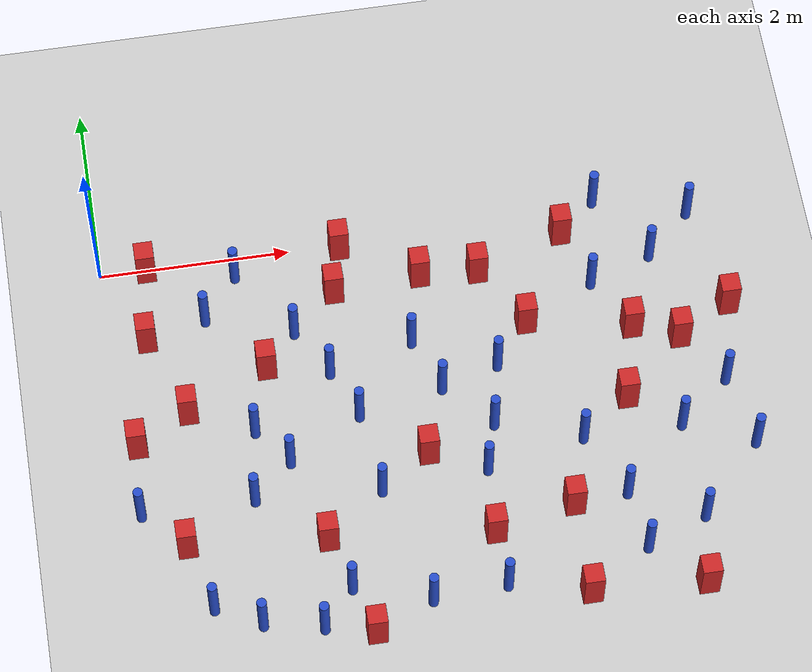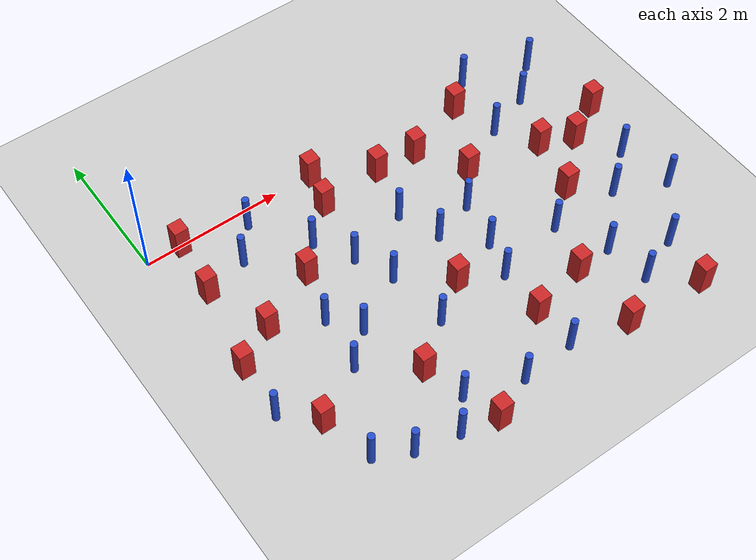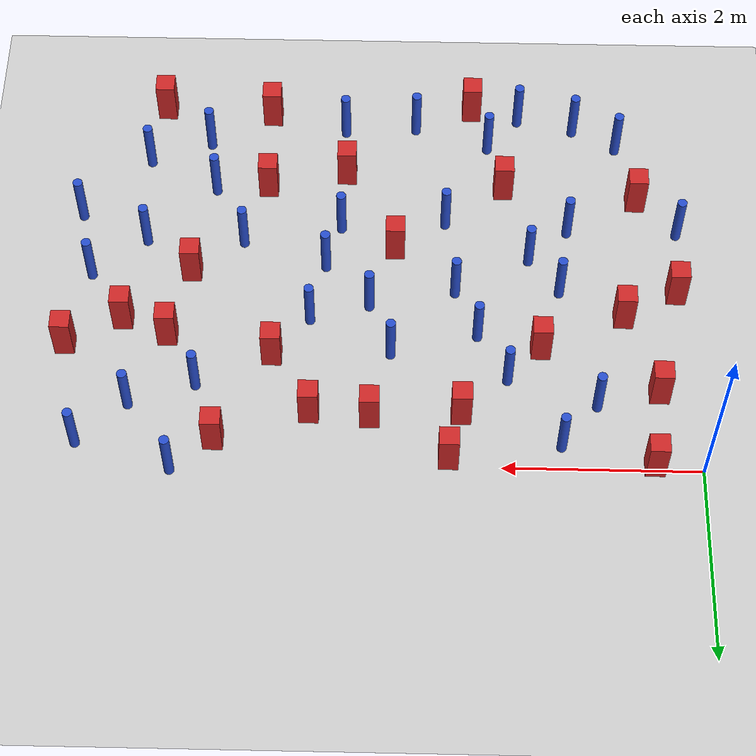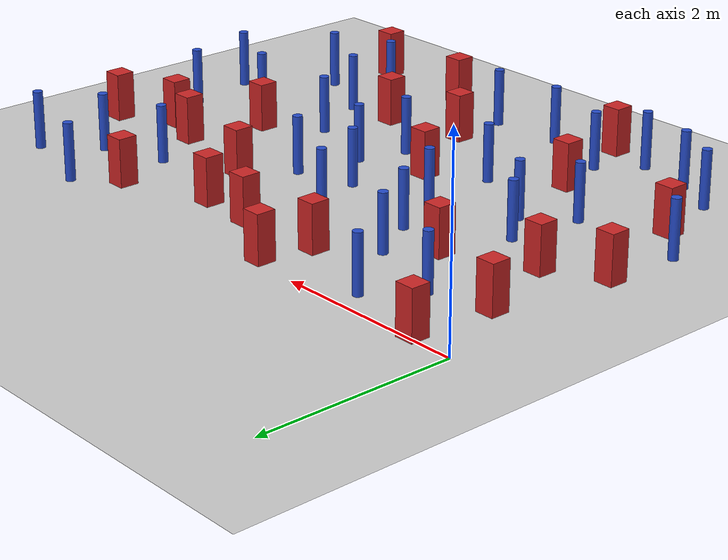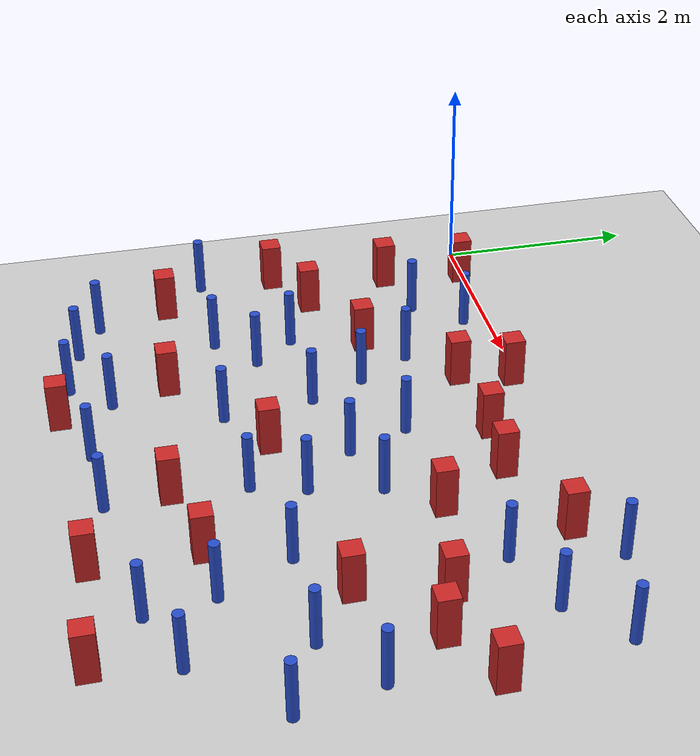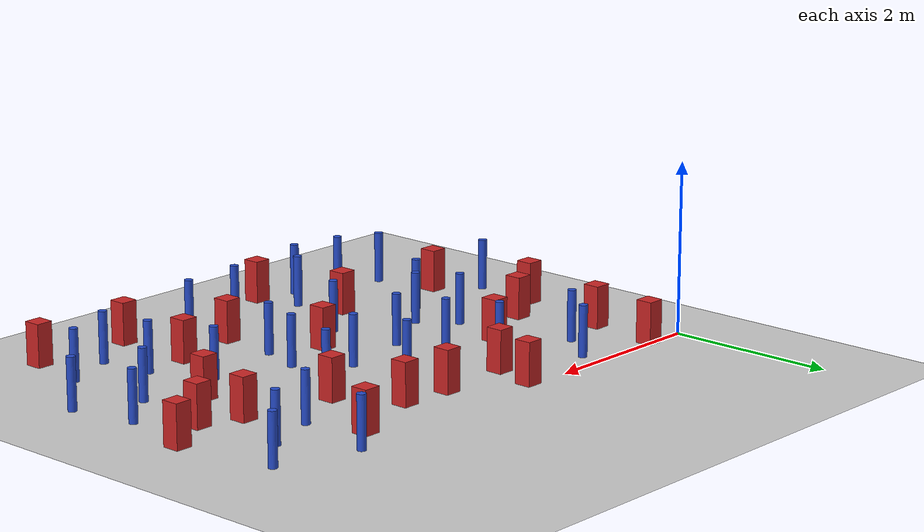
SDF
<sdf version="1.6">
 <world name="default">
  <model name="ground_plane">
   <static>1</static>
   <link name="link">
    <collision name="collision">
     <geometry><plane><normal>0 0 1</normal><size>100 100</size></plane></geometry>
     <surface><friction><ode><mu>100</mu><mu2>50</mu2></ode></friction></surface>
    </collision>
    <visual name="visual">
     <cast_shadows>0</cast_shadows>
     <geometry><plane><normal>0 0 1</normal><size>100 100</size></plane></geometry>
     <material>
      <ambient>1.0 1.0 1.0 1.0</ambient>
      <diffuse>0.8 0.8 0.8 1.0</diffuse>
      <specular>0.01 0.01 0.01 1.000000</specular>
     </material>
    </visual>
   </link>
  </model>
  <model name="square_post_obstacle1">
   <static>true</static>
   <pose>5.86830122638 -1.66071499697 -6.11067671241e-07 -5.50515727128e-06 -8.79689657224e-07 2.37013304536e-05</pose>
   <link name="link">
    <pose>0 0 0.25 0 -0 0</pose>
    <inertial>
     <mass>100</mass>
     <inertia>
      <ixx>0.166667</ixx>
      <ixy>0</ixy>
      <ixz>0</ixz>
      <iyy>0.166667</iyy>
      <iyz>0</iyz>
      <izz>0.166667</izz>
     </inertia>
    </inertial>
    <collision name="collision"><geometry><box><size>.2 .2 .5</size></box></geometry></collision>
    <visual name="visual">
     <geometry><box><size>.2 .2 .5</size></box></geometry>
     <material>
      <script><name>Gazebo/Red</name><uri>file://media/materials/scripts/gazebo.material</uri></script>
     </material>
    </visual>
   </link>
  </model>
  <model name="square_post_obstacle5">
   <static>true</static>
   <pose>0.531658014159 -3.27056971357 -6.11067671241e-07 -5.50515727128e-06 -8.79689657224e-07 2.37013304536e-05</pose>
   <link name="link">
    <pose>0 0 0.25 0 -0 0</pose>
    <inertial>
     <mass>100</mass>
     <inertia>
      <ixx>0.166667</ixx>
      <ixy>0</ixy>
      <ixz>0</ixz>
      <iyy>0.166667</iyy>
      <iyz>0</iyz>
      <izz>0.166667</izz>
     </inertia>
    </inertial>
    <collision name="collision"><geometry><box><size>.2 .2 .5</size></box></geometry></collision>
    <visual name="visual">
     <geometry><box><size>.2 .2 .5</size></box></geometry>
     <material>
      <script><name>Gazebo/Red</name><uri>file://media/materials/scripts/gazebo.material</uri></script>
     </material>
    </visual>
   </link>
  </model>
  <model name="square_post_obstacle13">
   <static>true</static>
   <pose>4.85556807542 -0.253288321257 -6.11067671241e-07 -5.50515727128e-06 -8.79689657224e-07 2.37013304536e-05</pose>
   <link name="link">
    <pose>0 0 0.25 0 -0 0</pose>
    <inertial>
     <mass>100</mass>
     <inertia>
      <ixx>0.166667</ixx>
      <ixy>0</ixy>
      <ixz>0</ixz>
      <iyy>0.166667</iyy>
      <iyz>0</iyz>
      <izz>0.166667</izz>
     </inertia>
    </inertial>
    <collision name="collision"><geometry><box><size>.2 .2 .5</size></box></geometry></collision>
    <visual name="visual">
     <geometry><box><size>.2 .2 .5</size></box></geometry>
     <material>
      <script><name>Gazebo/Red</name><uri>file://media/materials/scripts/gazebo.material</uri></script>
     </material>
    </visual>
   </link>
  </model>
  <model name="square_post_obstacle22">
   <static>true</static>
   <pose>4.44872754876 -3.39286007502 -6.11067671241e-07 -5.50515727128e-06 -8.79689657224e-07 2.37013304536e-05</pose>
   <link name="link">
    <pose>0 0 0.25 0 -0 0</pose>
    <inertial>
     <mass>100</mass>
     <inertia>
      <ixx>0.166667</ixx>
      <ixy>0</ixy>
      <ixz>0</ixz>
      <iyy>0.166667</iyy>
      <iyz>0</iyz>
      <izz>0.166667</izz>
     </inertia>
    </inertial>
    <collision name="collision"><geometry><box><size>.2 .2 .5</size></box></geometry></collision>
    <visual name="visual">
     <geometry><box><size>.2 .2 .5</size></box></geometry>
     <material>
      <script><name>Gazebo/Red</name><uri>file://media/materials/scripts/gazebo.material</uri></script>
     </material>
    </visual>
   </link>
  </model>
  <model name="pole_obstacle20">
   <static>true</static>
   <pose>3.11253889244 -1.29925664123 -9.47619616065e-06 5.49618799737e-07 2.36310414072e-07 -1.55090534793e-07</pose>
   <link name="link">
    <pose>0 0 0.3 0 -0 0</pose>
    <inertial>
     <mass>1</mass>
     <inertia><ixx>0.145833</ixx><ixy>0</ixy><ixz>0</ixz><iyy>0.145833</iyy><iyz>0</iyz><izz>0.125</izz></inertia>
    </inertial>
    <collision name="collision">
     <geometry><cylinder><radius>0.05</radius><length>.6</length></cylinder></geometry>
    </collision>
    <visual name="visual">
     <geometry><cylinder><radius>0.05</radius><length>.6</length></cylinder></geometry>
     <material>
      <script><name>Gazebo/Blue</name><uri>file://media/materials/scripts/gazebo.material</uri></script>
     </material>
    </visual>
   </link>
  </model>
  <model name="square_post_obstacle31">
   <static>true</static>
   <pose>1.58299561077 -1.37875278012 -6.11067671241e-07 -5.50515727128e-06 -8.79689657224e-07 2.37013304536e-05</pose>
   <link name="link">
    <pose>0 0 0.25 0 -0 0</pose>
    <inertial>
     <mass>100</mass>
     <inertia>
      <ixx>0.166667</ixx>
      <ixy>0</ixy>
      <ixz>0</ixz>
      <iyy>0.166667</iyy>
      <iyz>0</iyz>
      <izz>0.166667</izz>
     </inertia>
    </inertial>
    <collision name="collision"><geometry><box><size>.2 .2 .5</size></box></geometry></collision>
    <visual name="visual">
     <geometry><box><size>.2 .2 .5</size></box></geometry>
     <material>
      <script><name>Gazebo/Red</name><uri>file://media/materials/scripts/gazebo.material</uri></script>
     </material>
    </visual>
   </link>
  </model>
  <model name="pole_obstacle25">
   <static>true</static>
   <pose>0.714060411418 -3.9877952971 -9.47619616065e-06 5.49618799737e-07 2.3631041408e-07 -1.55090534791e-07</pose>
   <link name="link">
    <pose>0 0 0.3 0 -0 0</pose>
    <inertial>
     <mass>1</mass>
     <inertia><ixx>0.145833</ixx><ixy>0</ixy><ixz>0</ixz><iyy>0.145833</iyy><iyz>0</iyz><izz>0.125</izz></inertia>
    </inertial>
    <collision name="collision">
     <geometry><cylinder><radius>0.05</radius><length>.6</length></cylinder></geometry>
    </collision>
    <visual name="visual">
     <geometry><cylinder><radius>0.05</radius><length>.6</length></cylinder></geometry>
     <material>
      <script><name>Gazebo/Blue</name><uri>file://media/materials/scripts/gazebo.material</uri></script>
     </material>
    </visual>
   </link>
  </model>
  <model name="pole_obstacle28">
   <static>true</static>
   <pose>5.0760457368 -0.890218081996 -9.47619616065e-06 5.49618799737e-07 2.36310414061e-07 -1.550905348e-07</pose>
   <link name="link">
    <pose>0 0 0.3 0 -0 0</pose>
    <inertial>
     <mass>1</mass>
     <inertia><ixx>0.145833</ixx><ixy>0</ixy><ixz>0</ixz><iyy>0.145833</iyy><iyz>0</iyz><izz>0.125</izz></inertia>
    </inertial>
    <collision name="collision">
     <geometry><cylinder><radius>0.05</radius><length>.6</length></cylinder></geometry>
    </collision>
    <visual name="visual">
     <geometry><cylinder><radius>0.05</radius><length>.6</length></cylinder></geometry>
     <material>
      <script><name>Gazebo/Blue</name><uri>file://media/materials/scripts/gazebo.material</uri></script>
     </material>
    </visual>
   </link>
  </model>
  <model name="pole_obstacle30">
   <static>true</static>
   <pose>5.00867443221 -3.35146531265 -9.47619616065e-06 5.49618799738e-07 2.36310414051e-07 -1.55090534805e-07</pose>
   <link name="link">
    <pose>0 0 0.3 0 -0 0</pose>
    <inertial>
     <mass>1</mass>
     <inertia><ixx>0.145833</ixx><ixy>0</ixy><ixz>0</ixz><iyy>0.145833</iyy><iyz>0</iyz><izz>0.125</izz></inertia>
    </inertial>
    <collision name="collision">
     <geometry><cylinder><radius>0.05</radius><length>.6</length></cylinder></geometry>
    </collision>
    <visual name="visual">
     <geometry><cylinder><radius>0.05</radius><length>.6</length></cylinder></geometry>
     <material>
      <script><name>Gazebo/Blue</name><uri>file://media/materials/scripts/gazebo.material</uri></script>
     </material>
    </visual>
   </link>
  </model>
  <model name="square_post_obstacle35">
   <static>true</static>
   <pose>3.08337548846 -2.60095719022 -6.11067671241e-07 -5.50515727128e-06 -8.79689657224e-07 2.37013304536e-05</pose>
   <link name="link">
    <pose>0 0 0.25 0 -0 0</pose>
    <inertial>
     <mass>100</mass>
     <inertia>
      <ixx>0.166667</ixx>
      <ixy>0</ixy>
      <ixz>0</ixz>
      <iyy>0.166667</iyy>
      <iyz>0</iyz>
      <izz>0.166667</izz>
     </inertia>
    </inertial>
    <collision name="collision"><geometry><box><size>.2 .2 .5</size></box></geometry></collision>
    <visual name="visual">
     <geometry><box><size>.2 .2 .5</size></box></geometry>
     <material>
      <script><name>Gazebo/Red</name><uri>file://media/materials/scripts/gazebo.material</uri></script>
     </material>
    </visual>
   </link>
  </model>
  <model name="square_post_obstacle48">
   <static>true</static>
   <pose>0.720664369103 -1.77512101826 -6.11067671241e-07 -5.50515727128e-06 -8.79689657224e-07 2.37013304536e-05</pose>
   <link name="link">
    <pose>0 0 0.25 0 -0 0</pose>
    <inertial>
     <mass>100</mass>
     <inertia>
      <ixx>0.166667</ixx>
      <ixy>0</ixy>
      <ixz>0</ixz>
      <iyy>0.166667</iyy>
      <iyz>0</iyz>
      <izz>0.166667</izz>
     </inertia>
    </inertial>
    <collision name="collision"><geometry><box><size>.2 .2 .5</size></box></geometry></collision>
    <visual name="visual">
     <geometry><box><size>.2 .2 .5</size></box></geometry>
     <material>
      <script><name>Gazebo/Red</name><uri>file://media/materials/scripts/gazebo.material</uri></script>
     </material>
    </visual>
   </link>
  </model>
  <model name="pole_obstacle47">
   <static>true</static>
   <pose>2.45380788873 -2.06779763313 -9.47619616065e-06 5.49618799737e-07 2.36310414051e-07 -1.55090534807e-07</pose>
   <link name="link">
    <pose>0 0 0.3 0 -0 0</pose>
    <inertial>
     <mass>1</mass>
     <inertia><ixx>0.145833</ixx><ixy>0</ixy><ixz>0</ixz><iyy>0.145833</iyy><iyz>0</iyz><izz>0.125</izz></inertia>
    </inertial>
    <collision name="collision">
     <geometry><cylinder><radius>0.05</radius><length>.6</length></cylinder></geometry>
    </collision>
    <visual name="visual">
     <geometry><cylinder><radius>0.05</radius><length>.6</length></cylinder></geometry>
     <material>
      <script><name>Gazebo/Blue</name><uri>file://media/materials/scripts/gazebo.material</uri></script>
     </material>
    </visual>
   </link>
  </model>
  <model name="pole_obstacle48">
   <static>true</static>
   <pose>6.41035813431 -2.98511904987 -9.47619616065e-06 5.49618799738e-07 2.36310414051e-07 -1.55090534805e-07</pose>
   <link name="link">
    <pose>0 0 0.3 0 -0 0</pose>
    <inertial>
     <mass>1</mass>
     <inertia><ixx>0.145833</ixx><ixy>0</ixy><ixz>0</ixz><iyy>0.145833</iyy><iyz>0</iyz><izz>0.125</izz></inertia>
    </inertial>
    <collision name="collision">
     <geometry><cylinder><radius>0.05</radius><length>.6</length></cylinder></geometry>
    </collision>
    <visual name="visual">
     <geometry><cylinder><radius>0.05</radius><length>.6</length></cylinder></geometry>
     <material>
      <script><name>Gazebo/Blue</name><uri>file://media/materials/scripts/gazebo.material</uri></script>
     </material>
    </visual>
   </link>
  </model>
  <model name="square_post_obstacle52">
   <static>true</static>
   <pose>3.91695977695 -0.578861720409 -6.11067671241e-07 -5.50515727128e-06 -8.79689657224e-07 2.37013304536e-05</pose>
   <link name="link">
    <pose>0 0 0.25 0 -0 0</pose>
    <inertial>
     <mass>100</mass>
     <inertia>
      <ixx>0.166667</ixx>
      <ixy>0</ixy>
      <ixz>0</ixz>
      <iyy>0.166667</iyy>
      <iyz>0</iyz>
      <izz>0.166667</izz>
     </inertia>
    </inertial>
    <collision name="collision"><geometry><box><size>.2 .2 .5</size></box></geometry></collision>
    <visual name="visual">
     <geometry><box><size>.2 .2 .5</size></box></geometry>
     <material>
      <script><name>Gazebo/Red</name><uri>file://media/materials/scripts/gazebo.material</uri></script>
     </material>
    </visual>
   </link>
  </model>
  <model name="square_post_obstacle54">
   <static>true</static>
   <pose>4.31930750571 -1.25396493504 -6.11067671241e-07 -5.50515727128e-06 -8.79689657224e-07 2.37013304536e-05</pose>
   <link name="link">
    <pose>0 0 0.25 0 -0 0</pose>
    <inertial>
     <mass>100</mass>
     <inertia>
      <ixx>0.166667</ixx>
      <ixy>0</ixy>
      <ixz>0</ixz>
      <iyy>0.166667</iyy>
      <iyz>0</iyz>
      <izz>0.166667</izz>
     </inertia>
    </inertial>
    <collision name="collision"><geometry><box><size>.2 .2 .5</size></box></geometry></collision>
    <visual name="visual">
     <geometry><box><size>.2 .2 .5</size></box></geometry>
     <material>
      <script><name>Gazebo/Red</name><uri>file://media/materials/scripts/gazebo.material</uri></script>
     </material>
    </visual>
   </link>
  </model>
  <model name="square_post_obstacle55">
   <static>true</static>
   <pose>2.3941682482 -0.592048305491 -6.11067671241e-07 -5.50515727128e-06 -8.79689657224e-07 2.37013304536e-05</pose>
   <link name="link">
    <pose>0 0 0.25 0 -0 0</pose>
    <inertial>
     <mass>100</mass>
     <inertia>
      <ixx>0.166667</ixx>
      <ixy>0</ixy>
      <ixz>0</ixz>
      <iyy>0.166667</iyy>
      <iyz>0</iyz>
      <izz>0.166667</izz>
     </inertia>
    </inertial>
    <collision name="collision"><geometry><box><size>.2 .2 .5</size></box></geometry></collision>
    <visual name="visual">
     <geometry><box><size>.2 .2 .5</size></box></geometry>
     <material>
      <script><name>Gazebo/Red</name><uri>file://media/materials/scripts/gazebo.material</uri></script>
     </material>
    </visual>
   </link>
  </model>
  <model name="square_post_obstacle61">
   <static>true</static>
   <pose>1.93967803504 -3.40700152004 -6.11067671241e-07 -5.50515727128e-06 -8.79689657224e-07 2.37013304536e-05</pose>
   <link name="link">
    <pose>0 0 0.25 0 -0 0</pose>
    <inertial>
     <mass>100</mass>
     <inertia>
      <ixx>0.166667</ixx>
      <ixy>0</ixy>
      <ixz>0</ixz>
      <iyy>0.166667</iyy>
      <iyz>0</iyz>
      <izz>0.166667</izz>
     </inertia>
    </inertial>
    <collision name="collision"><geometry><box><size>.2 .2 .5</size></box></geometry></collision>
    <visual name="visual">
     <geometry><box><size>.2 .2 .5</size></box></geometry>
     <material>
      <script><name>Gazebo/Red</name><uri>file://media/materials/scripts/gazebo.material</uri></script>
     </material>
    </visual>
   </link>
  </model>
  <model name="square_post_obstacle63">
   <static>true</static>
   <pose>3.61351188917 -3.57817391132 -6.11067671241e-07 -5.50515727128e-06 -8.79689657224e-07 2.37013304536e-05</pose>
   <link name="link">
    <pose>0 0 0.25 0 -0 0</pose>
    <inertial>
     <mass>100</mass>
     <inertia>
      <ixx>0.166667</ixx>
      <ixy>0</ixy>
      <ixz>0</ixz>
      <iyy>0.166667</iyy>
      <iyz>0</iyz>
      <izz>0.166667</izz>
     </inertia>
    </inertial>
    <collision name="collision"><geometry><box><size>.2 .2 .5</size></box></geometry></collision>
    <visual name="visual">
     <geometry><box><size>.2 .2 .5</size></box></geometry>
     <material>
      <script><name>Gazebo/Red</name><uri>file://media/materials/scripts/gazebo.material</uri></script>
     </material>
    </visual>
   </link>
  </model>
  <model name="pole_obstacle61">
   <static>true</static>
   <pose>2.8786557732 -4.2247093212 -9.47619616065e-06 5.49618799738e-07 2.3631041406e-07 -1.55090534801e-07</pose>
   <link name="link">
    <pose>0 0 0.3 0 -0 0</pose>
    <inertial>
     <mass>1</mass>
     <inertia><ixx>0.145833</ixx><ixy>0</ixy><ixz>0</ixz><iyy>0.145833</iyy><iyz>0</iyz><izz>0.125</izz></inertia>
    </inertial>
    <collision name="collision">
     <geometry><cylinder><radius>0.05</radius><length>.6</length></cylinder></geometry>
    </collision>
    <visual name="visual">
     <geometry><cylinder><radius>0.05</radius><length>.6</length></cylinder></geometry>
     <material>
      <script><name>Gazebo/Blue</name><uri>file://media/materials/scripts/gazebo.material</uri></script>
     </material>
    </visual>
   </link>
  </model>
  <model name="square_post_obstacle75">
   <static>true</static>
   <pose>4.44980734905 -4.37279620304 -6.11067671241e-07 -5.50515727128e-06 -8.79689657224e-07 2.37013304536e-05</pose>
   <link name="link">
    <pose>0 0 0.25 0 -0 0</pose>
    <inertial>
     <mass>100</mass>
     <inertia>
      <ixx>0.166667</ixx>
      <ixy>0</ixy>
      <ixz>0</ixz>
      <iyy>0.166667</iyy>
      <iyz>0</iyz>
      <izz>0.166667</izz>
     </inertia>
    </inertial>
    <collision name="collision"><geometry><box><size>.2 .2 .5</size></box></geometry></collision>
    <visual name="visual">
     <geometry><box><size>.2 .2 .5</size></box></geometry>
     <material>
      <script><name>Gazebo/Red</name><uri>file://media/materials/scripts/gazebo.material</uri></script>
     </material>
    </visual>
   </link>
  </model>
  <model name="pole_obstacle76">
   <static>true</static>
   <pose>5.70200396164 -2.66939371902 -9.47619616065e-06 5.49618799738e-07 2.36310414051e-07 -1.55090534805e-07</pose>
   <link name="link">
    <pose>0 0 0.3 0 -0 0</pose>
    <inertial>
     <mass>1</mass>
     <inertia><ixx>0.145833</ixx><ixy>0</ixy><ixz>0</ixz><iyy>0.145833</iyy><iyz>0</iyz><izz>0.125</izz></inertia>
    </inertial>
    <collision name="collision">
     <geometry><cylinder><radius>0.05</radius><length>.6</length></cylinder></geometry>
    </collision>
    <visual name="visual">
     <geometry><cylinder><radius>0.05</radius><length>.6</length></cylinder></geometry>
     <material>
      <script><name>Gazebo/Blue</name><uri>file://media/materials/scripts/gazebo.material</uri></script>
     </material>
    </visual>
   </link>
  </model>
  <model name="pole_obstacle82">
   <static>true</static>
   <pose>5.2673751742 0.0861989654456 -9.47619616065e-06 5.49618799737e-07 2.36310414064e-07 -1.55090534798e-07</pose>
   <link name="link">
    <pose>0 0 0.3 0 -0 0</pose>
    <inertial>
     <mass>1</mass>
     <inertia><ixx>0.145833</ixx><ixy>0</ixy><ixz>0</ixz><iyy>0.145833</iyy><iyz>0</iyz><izz>0.125</izz></inertia>
    </inertial>
    <collision name="collision">
     <geometry><cylinder><radius>0.05</radius><length>.6</length></cylinder></geometry>
    </collision>
    <visual name="visual">
     <geometry><cylinder><radius>0.05</radius><length>.6</length></cylinder></geometry>
     <material>
      <script><name>Gazebo/Blue</name><uri>file://media/materials/scripts/gazebo.material</uri></script>
     </material>
    </visual>
   </link>
  </model>
  <model name="pole_obstacle90">
   <static>true</static>
   <pose>5.1034576229 -3.9761638309 -9.47619616065e-06 5.49618799737e-07 2.36310414056e-07 -1.55090534802e-07</pose>
   <link name="link">
    <pose>0 0 0.3 0 -0 0</pose>
    <inertial>
     <mass>1</mass>
     <inertia><ixx>0.145833</ixx><ixy>0</ixy><ixz>0</ixz><iyy>0.145833</iyy><iyz>0</iyz><izz>0.125</izz></inertia>
    </inertial>
    <collision name="collision">
     <geometry><cylinder><radius>0.05</radius><length>.6</length></cylinder></geometry>
    </collision>
    <visual name="visual">
     <geometry><cylinder><radius>0.05</radius><length>.6</length></cylinder></geometry>
     <material>
      <script><name>Gazebo/Blue</name><uri>file://media/materials/scripts/gazebo.material</uri></script>
     </material>
    </visual>
   </link>
  </model>
  <model name="pole_obstacle93">
   <static>true</static>
   <pose>1.37252944193 -2.08955903736 -9.47619616065e-06 5.49618799737e-07 2.36310414062e-07 -1.55090534798e-07</pose>
   <link name="link">
    <pose>0 0 0.3 0 -0 0</pose>
    <inertial>
     <mass>1</mass>
     <inertia><ixx>0.145833</ixx><ixy>0</ixy><ixz>0</ixz><iyy>0.145833</iyy><iyz>0</iyz><izz>0.125</izz></inertia>
    </inertial>
    <collision name="collision">
     <geometry><cylinder><radius>0.05</radius><length>.6</length></cylinder></geometry>
    </collision>
    <visual name="visual">
     <geometry><cylinder><radius>0.05</radius><length>.6</length></cylinder></geometry>
     <material>
      <script><name>Gazebo/Blue</name><uri>file://media/materials/scripts/gazebo.material</uri></script>
     </material>
    </visual>
   </link>
  </model>
  <model name="pole_obstacle97">
   <static>true</static>
   <pose>5.74144183251 -0.65188639517 -9.47619616065e-06 5.49618799737e-07 2.36310414061e-07 -1.550905348e-07</pose>
   <link name="link">
    <pose>0 0 0.3 0 -0 0</pose>
    <inertial>
     <mass>1</mass>
     <inertia><ixx>0.145833</ixx><ixy>0</ixy><ixz>0</ixz><iyy>0.145833</iyy><iyz>0</iyz><izz>0.125</izz></inertia>
    </inertial>
    <collision name="collision">
     <geometry><cylinder><radius>0.05</radius><length>.6</length></cylinder></geometry>
    </collision>
    <visual name="visual">
     <geometry><cylinder><radius>0.05</radius><length>.6</length></cylinder></geometry>
     <material>
      <script><name>Gazebo/Blue</name><uri>file://media/materials/scripts/gazebo.material</uri></script>
     </material>
    </visual>
   </link>
  </model>
  <model name="pole_obstacle103">
   <static>true</static>
   <pose>2.10201894241 -3.97237946437 -9.47619616065e-06 5.49618799737e-07 2.36310414046e-07 -1.5509053481e-07</pose>
   <link name="link">
    <pose>0 0 0.3 0 -0 0</pose>
    <inertial>
     <mass>1</mass>
     <inertia><ixx>0.145833</ixx><ixy>0</ixy><ixz>0</ixz><iyy>0.145833</iyy><iyz>0</iyz><izz>0.125</izz></inertia>
    </inertial>
    <collision name="collision">
     <geometry><cylinder><radius>0.05</radius><length>.6</length></cylinder></geometry>
    </collision>
    <visual name="visual">
     <geometry><cylinder><radius>0.05</radius><length>.6</length></cylinder></geometry>
     <material>
      <script><name>Gazebo/Blue</name><uri>file://media/materials/scripts/gazebo.material</uri></script>
     </material>
    </visual>
   </link>
  </model>
  <model name="pole_obstacle105">
   <static>true</static>
   <pose>1.27134130306 -2.86104513482 -9.47619616065e-06 5.49618799737e-07 2.36310414062e-07 -1.55090534798e-07</pose>
   <link name="link">
    <pose>0 0 0.3 0 -0 0</pose>
    <inertial>
     <mass>1</mass>
     <inertia><ixx>0.145833</ixx><ixy>0</ixy><ixz>0</ixz><iyy>0.145833</iyy><iyz>0</iyz><izz>0.125</izz></inertia>
    </inertial>
    <collision name="collision">
     <geometry><cylinder><radius>0.05</radius><length>.6</length></cylinder></geometry>
    </collision>
    <visual name="visual">
     <geometry><cylinder><radius>0.05</radius><length>.6</length></cylinder></geometry>
     <material>
      <script><name>Gazebo/Blue</name><uri>file://media/materials/scripts/gazebo.material</uri></script>
     </material>
    </visual>
   </link>
  </model>
  <model name="pole_obstacle107">
   <static>true</static>
   <pose>6.22856777032 -0.199704851686 -9.47619616065e-06 5.49618799738e-07 2.36310414072e-07 -1.55090534795e-07</pose>
   <link name="link">
    <pose>0 0 0.3 0 -0 0</pose>
    <inertial>
     <mass>1</mass>
     <inertia><ixx>0.145833</ixx><ixy>0</ixy><ixz>0</ixz><iyy>0.145833</iyy><iyz>0</iyz><izz>0.125</izz></inertia>
    </inertial>
    <collision name="collision">
     <geometry><cylinder><radius>0.05</radius><length>.6</length></cylinder></geometry>
    </collision>
    <visual name="visual">
     <geometry><cylinder><radius>0.05</radius><length>.6</length></cylinder></geometry>
     <material>
      <script><name>Gazebo/Blue</name><uri>file://media/materials/scripts/gazebo.material</uri></script>
     </material>
    </visual>
   </link>
  </model>
  <model name="square_post_obstacle95">
   <static>true</static>
   <pose>0.487415033159 -0.0414900106225 -6.11067671241e-07 -5.50515727128e-06 -8.79689657224e-07 2.37013304536e-05</pose>
   <link name="link">
    <pose>0 0 0.25 0 -0 0</pose>
    <inertial>
     <mass>100</mass>
     <inertia>
      <ixx>0.166667</ixx>
      <ixy>0</ixy>
      <ixz>0</ixz>
      <iyy>0.166667</iyy>
      <iyz>0</iyz>
      <izz>0.166667</izz>
     </inertia>
    </inertial>
    <collision name="collision"><geometry><box><size>.2 .2 .5</size></box></geometry></collision>
    <visual name="visual">
     <geometry><box><size>.2 .2 .5</size></box></geometry>
     <material>
      <script><name>Gazebo/Red</name><uri>file://media/materials/scripts/gazebo.material</uri></script>
     </material>
    </visual>
   </link>
  </model>
  <model name="pole_obstacle113">
   <static>true</static>
   <pose>1.0275561532 -0.7168173592 -9.47619616065e-06 5.49618799737e-07 2.36310414051e-07 -1.55090534805e-07</pose>
   <link name="link">
    <pose>0 0 0.3 0 -0 0</pose>
    <inertial>
     <mass>1</mass>
     <inertia><ixx>0.145833</ixx><ixy>0</ixy><ixz>0</ixz><iyy>0.145833</iyy><iyz>0</iyz><izz>0.125</izz></inertia>
    </inertial>
    <collision name="collision">
     <geometry><cylinder><radius>0.05</radius><length>.6</length></cylinder></geometry>
    </collision>
    <visual name="visual">
     <geometry><cylinder><radius>0.05</radius><length>.6</length></cylinder></geometry>
     <material>
      <script><name>Gazebo/Blue</name><uri>file://media/materials/scripts/gazebo.material</uri></script>
     </material>
    </visual>
   </link>
  </model>
  <model name="square_post_obstacle102">
   <static>true</static>
   <pose>2.52334339635 -0.075984230897 -6.11067671241e-07 -5.50515727128e-06 -8.79689657224e-07 2.37013304536e-05</pose>
   <link name="link">
    <pose>0 0 0.25 0 -0 0</pose>
    <inertial>
     <mass>100</mass>
     <inertia>
      <ixx>0.166667</ixx>
      <ixy>0</ixy>
      <ixz>0</ixz>
      <iyy>0.166667</iyy>
      <iyz>0</iyz>
      <izz>0.166667</izz>
     </inertia>
    </inertial>
    <collision name="collision"><geometry><box><size>.2 .2 .5</size></box></geometry></collision>
    <visual name="visual">
     <geometry><box><size>.2 .2 .5</size></box></geometry>
     <material>
      <script><name>Gazebo/Red</name><uri>file://media/materials/scripts/gazebo.material</uri></script>
     </material>
    </visual>
   </link>
  </model>
  <model name="pole_obstacle134">
   <static>true</static>
   <pose>3.9472474391 -1.70288127452 -9.47619616065e-06 5.49618799737e-07 2.36310414072e-07 -1.55090534793e-07</pose>
   <link name="link">
    <pose>0 0 0.3 0 -0 0</pose>
    <inertial>
     <mass>1</mass>
     <inertia><ixx>0.145833</ixx><ixy>0</ixy><ixz>0</ixz><iyy>0.145833</iyy><iyz>0</iyz><izz>0.125</izz></inertia>
    </inertial>
    <collision name="collision">
     <geometry><cylinder><radius>0.05</radius><length>.6</length></cylinder></geometry>
    </collision>
    <visual name="visual">
     <geometry><cylinder><radius>0.05</radius><length>.6</length></cylinder></geometry>
     <material>
      <script><name>Gazebo/Blue</name><uri>file://media/materials/scripts/gazebo.material</uri></script>
     </material>
    </visual>
   </link>
  </model>
  <model name="square_post_obstacle129">
   <static>true</static>
   <pose>5.19985017555 -2.27401234155 -6.11067671241e-07 -5.50515727128e-06 -8.79689657224e-07 2.37013304536e-05</pose>
   <link name="link">
    <pose>0 0 0.25 0 -0 0</pose>
    <inertial>
     <mass>100</mass>
     <inertia>
      <ixx>0.166667</ixx>
      <ixy>0</ixy>
      <ixz>0</ixz>
      <iyy>0.166667</iyy>
      <iyz>0</iyz>
      <izz>0.166667</izz>
     </inertia>
    </inertial>
    <collision name="collision"><geometry><box><size>.2 .2 .5</size></box></geometry></collision>
    <visual name="visual">
     <geometry><box><size>.2 .2 .5</size></box></geometry>
     <material>
      <script><name>Gazebo/Red</name><uri>file://media/materials/scripts/gazebo.material</uri></script>
     </material>
    </visual>
   </link>
  </model>
  <model name="pole_obstacle142">
   <static>true</static>
   <pose>3.65548129713 -2.87441362496 -9.47619616065e-06 5.49618799737e-07 2.36310414051e-07 -1.55090534807e-07</pose>
   <link name="link">
    <pose>0 0 0.3 0 -0 0</pose>
    <inertial>
     <mass>1</mass>
     <inertia><ixx>0.145833</ixx><ixy>0</ixy><ixz>0</ixz><iyy>0.145833</iyy><iyz>0</iyz><izz>0.125</izz></inertia>
    </inertial>
    <collision name="collision">
     <geometry><cylinder><radius>0.05</radius><length>.6</length></cylinder></geometry>
    </collision>
    <visual name="visual">
     <geometry><cylinder><radius>0.05</radius><length>.6</length></cylinder></geometry>
     <material>
      <script><name>Gazebo/Blue</name><uri>file://media/materials/scripts/gazebo.material</uri></script>
     </material>
    </visual>
   </link>
  </model>
  <model name="pole_obstacle146">
   <static>true</static>
   <pose>1.92386983412 -1.00737284559 -9.47619616065e-06 5.49618799738e-07 2.36310414064e-07 -1.55090534797e-07</pose>
   <link name="link">
    <pose>0 0 0.3 0 -0 0</pose>
    <inertial>
     <mass>1</mass>
     <inertia><ixx>0.145833</ixx><ixy>0</ixy><ixz>0</ixz><iyy>0.145833</iyy><iyz>0</iyz><izz>0.125</izz></inertia>
    </inertial>
    <collision name="collision">
     <geometry><cylinder><radius>0.05</radius><length>.6</length></cylinder></geometry>
    </collision>
    <visual name="visual">
     <geometry><cylinder><radius>0.05</radius><length>.6</length></cylinder></geometry>
     <material>
      <script><name>Gazebo/Blue</name><uri>file://media/materials/scripts/gazebo.material</uri></script>
     </material>
    </visual>
   </link>
  </model>
  <model name="pole_obstacle147">
   <static>true</static>
   <pose>5.73982027268 -3.72153784572 -9.47619616065e-06 5.49618799738e-07 2.36310414051e-07 -1.55090534805e-07</pose>
   <link name="link">
    <pose>0 0 0.3 0 -0 0</pose>
    <inertial>
     <mass>1</mass>
     <inertia><ixx>0.145833</ixx><ixy>0</ixy><ixz>0</ixz><iyy>0.145833</iyy><iyz>0</iyz><izz>0.125</izz></inertia>
    </inertial>
    <collision name="collision">
     <geometry><cylinder><radius>0.05</radius><length>.6</length></cylinder></geometry>
    </collision>
    <visual name="visual">
     <geometry><cylinder><radius>0.05</radius><length>.6</length></cylinder></geometry>
     <material>
      <script><name>Gazebo/Blue</name><uri>file://media/materials/scripts/gazebo.material</uri></script>
     </material>
    </visual>
   </link>
  </model>
  <model name="pole_obstacle148">
   <static>true</static>
   <pose>1.68370239378 -2.48863569007 -9.47619616065e-06 5.49618799737e-07 2.36310414062e-07 -1.55090534798e-07</pose>
   <link name="link">
    <pose>0 0 0.3 0 -0 0</pose>
    <inertial>
     <mass>1</mass>
     <inertia><ixx>0.145833</ixx><ixy>0</ixy><ixz>0</ixz><iyy>0.145833</iyy><iyz>0</iyz><izz>0.125</izz></inertia>
    </inertial>
    <collision name="collision">
     <geometry><cylinder><radius>0.05</radius><length>.6</length></cylinder></geometry>
    </collision>
    <visual name="visual">
     <geometry><cylinder><radius>0.05</radius><length>.6</length></cylinder></geometry>
     <material>
      <script><name>Gazebo/Blue</name><uri>file://media/materials/scripts/gazebo.material</uri></script>
     </material>
    </visual>
   </link>
  </model>
  <model name="square_post_obstacle137">
   <static>true</static>
   <pose>0.399843714477 -0.874456353951 -6.11067671241e-07 -5.50515727128e-06 -8.79689657224e-07 2.37013304536e-05</pose>
   <link name="link">
    <pose>0 0 0.25 0 -0 0</pose>
    <inertial>
     <mass>100</mass>
     <inertia>
      <ixx>0.166667</ixx>
      <ixy>0</ixy>
      <ixz>0</ixz>
      <iyy>0.166667</iyy>
      <iyz>0</iyz>
      <izz>0.166667</izz>
     </inertia>
    </inertial>
    <collision name="collision"><geometry><box><size>.2 .2 .5</size></box></geometry></collision>
    <visual name="visual">
     <geometry><box><size>.2 .2 .5</size></box></geometry>
     <material>
      <script><name>Gazebo/Red</name><uri>file://media/materials/scripts/gazebo.material</uri></script>
     </material>
    </visual>
   </link>
  </model>
  <model name="pole_obstacle152">
   <static>true</static>
   <pose>2.55755493089 -2.94888286398 -9.47619616065e-06 5.49618799737e-07 2.36310414051e-07 -1.55090534807e-07</pose>
   <link name="link">
    <pose>0 0 0.3 0 -0 0</pose>
    <inertial>
     <mass>1</mass>
     <inertia><ixx>0.145833</ixx><ixy>0</ixy><ixz>0</ixz><iyy>0.145833</iyy><iyz>0</iyz><izz>0.125</izz></inertia>
    </inertial>
    <collision name="collision">
     <geometry><cylinder><radius>0.05</radius><length>.6</length></cylinder></geometry>
    </collision>
    <visual name="visual">
     <geometry><cylinder><radius>0.05</radius><length>.6</length></cylinder></geometry>
     <material>
      <script><name>Gazebo/Blue</name><uri>file://media/materials/scripts/gazebo.material</uri></script>
     </material>
    </visual>
   </link>
  </model>
  <model name="pole_obstacle164">
   <static>true</static>
   <pose>3.33950867203 -1.88448606209 -9.47619616065e-06 5.49618799737e-07 2.36310414072e-07 -1.55090534793e-07</pose>
   <link name="link">
    <pose>0 0 0.3 0 -0 0</pose>
    <inertial>
     <mass>1</mass>
     <inertia><ixx>0.145833</ixx><ixy>0</ixy><ixz>0</ixz><iyy>0.145833</iyy><iyz>0</iyz><izz>0.125</izz></inertia>
    </inertial>
    <collision name="collision">
     <geometry><cylinder><radius>0.05</radius><length>.6</length></cylinder></geometry>
    </collision>
    <visual name="visual">
     <geometry><cylinder><radius>0.05</radius><length>.6</length></cylinder></geometry>
     <material>
      <script><name>Gazebo/Blue</name><uri>file://media/materials/scripts/gazebo.material</uri></script>
     </material>
    </visual>
   </link>
  </model>
  <model name="pole_obstacle165">
   <static>true</static>
   <pose>3.64267580898 -4.17358866189 -9.47619616065e-06 5.49618799738e-07 2.3631041406e-07 -1.55090534801e-07</pose>
   <link name="link">
    <pose>0 0 0.3 0 -0 0</pose>
    <inertial>
     <mass>1</mass>
     <inertia><ixx>0.145833</ixx><ixy>0</ixy><ixz>0</ixz><iyy>0.145833</iyy><iyz>0</iyz><izz>0.125</izz></inertia>
    </inertial>
    <collision name="collision">
     <geometry><cylinder><radius>0.05</radius><length>.6</length></cylinder></geometry>
    </collision>
    <visual name="visual">
     <geometry><cylinder><radius>0.05</radius><length>.6</length></cylinder></geometry>
     <material>
      <script><name>Gazebo/Blue</name><uri>file://media/materials/scripts/gazebo.material</uri></script>
     </material>
    </visual>
   </link>
  </model>
  <model name="pole_obstacle168">
   <static>true</static>
   <pose>2.22565099891 -1.53153348893 -9.47619616065e-06 5.49618799737e-07 2.36310414072e-07 -1.55090534793e-07</pose>
   <link name="link">
    <pose>0 0 0.3 0 -0 0</pose>
    <inertial>
     <mass>1</mass>
     <inertia><ixx>0.145833</ixx><ixy>0</ixy><ixz>0</ixz><iyy>0.145833</iyy><iyz>0</iyz><izz>0.125</izz></inertia>
    </inertial>
    <collision name="collision">
     <geometry><cylinder><radius>0.05</radius><length>.6</length></cylinder></geometry>
    </collision>
    <visual name="visual">
     <geometry><cylinder><radius>0.05</radius><length>.6</length></cylinder></geometry>
     <material>
      <script><name>Gazebo/Blue</name><uri>file://media/materials/scripts/gazebo.material</uri></script>
     </material>
    </visual>
   </link>
  </model>
  <model name="pole_obstacle174">
   <static>true</static>
   <pose>1.39814567267 -0.246064571508 -9.47619616065e-06 5.49618799737e-07 2.36310414055e-07 -1.55090534804e-07</pose>
   <link name="link">
    <pose>0 0 0.3 0 -0 0</pose>
    <inertial>
     <mass>1</mass>
     <inertia><ixx>0.145833</ixx><ixy>0</ixy><ixz>0</ixz><iyy>0.145833</iyy><iyz>0</iyz><izz>0.125</izz></inertia>
    </inertial>
    <collision name="collision">
     <geometry><cylinder><radius>0.05</radius><length>.6</length></cylinder></geometry>
    </collision>
    <visual name="visual">
     <geometry><cylinder><radius>0.05</radius><length>.6</length></cylinder></geometry>
     <material>
      <script><name>Gazebo/Blue</name><uri>file://media/materials/scripts/gazebo.material</uri></script>
     </material>
    </visual>
   </link>
  </model>
  <model name="pole_obstacle175">
   <static>true</static>
   <pose>4.67771879888 -2.6673333605 -9.47619616065e-06 5.49618799738e-07 2.36310414051e-07 -1.55090534805e-07</pose>
   <link name="link">
    <pose>0 0 0.3 0 -0 0</pose>
    <inertial>
     <mass>1</mass>
     <inertia><ixx>0.145833</ixx><ixy>0</ixy><ixz>0</ixz><iyy>0.145833</iyy><iyz>0</iyz><izz>0.125</izz></inertia>
    </inertial>
    <collision name="collision">
     <geometry><cylinder><radius>0.05</radius><length>.6</length></cylinder></geometry>
    </collision>
    <visual name="visual">
     <geometry><cylinder><radius>0.05</radius><length>.6</length></cylinder></geometry>
     <material>
      <script><name>Gazebo/Blue</name><uri>file://media/materials/scripts/gazebo.material</uri></script>
     </material>
    </visual>
   </link>
  </model>
  <model name="square_post_obstacle168">
   <static>true</static>
   <pose>0.163527224203 -2.08322024648 -6.11067671241e-07 -5.50515727128e-06 -8.79689657224e-07 2.37013304536e-05</pose>
   <link name="link">
    <pose>0 0 0.25 0 -0 0</pose>
    <inertial>
     <mass>100</mass>
     <inertia>
      <ixx>0.166667</ixx>
      <ixy>0</ixy>
      <ixz>0</ixz>
      <iyy>0.166667</iyy>
      <iyz>0</iyz>
      <izz>0.166667</izz>
     </inertia>
    </inertial>
    <collision name="collision"><geometry><box><size>.2 .2 .5</size></box></geometry></collision>
    <visual name="visual">
     <geometry><box><size>.2 .2 .5</size></box></geometry>
     <material>
      <script><name>Gazebo/Red</name><uri>file://media/materials/scripts/gazebo.material</uri></script>
     </material>
    </visual>
   </link>
  </model>
  <model name="pole_obstacle185">
   <static>true</static>
   <pose>1.17222935665 -4.22998056302 -9.47619616065e-06 5.49618799737e-07 2.36310414061e-07 -1.550905348e-07</pose>
   <link name="link">
    <pose>0 0 0.3 0 -0 0</pose>
    <inertial>
     <mass>1</mass>
     <inertia><ixx>0.145833</ixx><ixy>0</ixy><ixz>0</ixz><iyy>0.145833</iyy><iyz>0</iyz><izz>0.125</izz></inertia>
    </inertial>
    <collision name="collision">
     <geometry><cylinder><radius>0.05</radius><length>.6</length></cylinder></geometry>
    </collision>
    <visual name="visual">
     <geometry><cylinder><radius>0.05</radius><length>.6</length></cylinder></geometry>
     <material>
      <script><name>Gazebo/Blue</name><uri>file://media/materials/scripts/gazebo.material</uri></script>
     </material>
    </visual>
   </link>
  </model>
  <model name="pole_obstacle186">
   <static>true</static>
   <pose>0.114737513703 -2.85388387263 -9.47619616065e-06 5.49618799737e-07 2.36310414062e-07 -1.55090534799e-07</pose>
   <link name="link">
    <pose>0 0 0.3 0 -0 0</pose>
    <inertial>
     <mass>1</mass>
     <inertia><ixx>0.145833</ixx><ixy>0</ixy><ixz>0</ixz><iyy>0.145833</iyy><iyz>0</iyz><izz>0.125</izz></inertia>
    </inertial>
    <collision name="collision">
     <geometry><cylinder><radius>0.05</radius><length>.6</length></cylinder></geometry>
    </collision>
    <visual name="visual">
     <geometry><cylinder><radius>0.05</radius><length>.6</length></cylinder></geometry>
     <material>
      <script><name>Gazebo/Blue</name><uri>file://media/materials/scripts/gazebo.material</uri></script>
     </material>
    </visual>
   </link>
  </model>
  <model name="square_post_obstacle182">
   <static>true</static>
   <pose>5.61449441817 -4.44563576746 -6.11067671241e-07 -5.50515727128e-06 -8.79689657224e-07 2.37013304536e-05</pose>
   <link name="link">
    <pose>0 0 0.25 0 -0 0</pose>
    <inertial>
     <mass>100</mass>
     <inertia>
      <ixx>0.166667</ixx>
      <ixy>0</ixy>
      <ixz>0</ixz>
      <iyy>0.166667</iyy>
      <iyz>0</iyz>
      <izz>0.166667</izz>
     </inertia>
    </inertial>
    <collision name="collision"><geometry><box><size>.2 .2 .5</size></box></geometry></collision>
    <visual name="visual">
     <geometry><box><size>.2 .2 .5</size></box></geometry>
     <material>
      <script><name>Gazebo/Red</name><uri>file://media/materials/scripts/gazebo.material</uri></script>
     </material>
    </visual>
   </link>
  </model>
  <model name="square_post_obstacle184">
   <static>true</static>
   <pose>5.39720423046 -1.47076082038 -6.11067671241e-07 -5.50515727128e-06 -8.79689657224e-07 2.37013304536e-05</pose>
   <link name="link">
    <pose>0 0 0.25 0 -0 0</pose>
    <inertial>
     <mass>100</mass>
     <inertia>
      <ixx>0.166667</ixx>
      <ixy>0</ixy>
      <ixz>0</ixz>
      <iyy>0.166667</iyy>
      <iyz>0</iyz>
      <izz>0.166667</izz>
     </inertia>
    </inertial>
    <collision name="collision"><geometry><box><size>.2 .2 .5</size></box></geometry></collision>
    <visual name="visual">
     <geometry><box><size>.2 .2 .5</size></box></geometry>
     <material>
      <script><name>Gazebo/Red</name><uri>file://media/materials/scripts/gazebo.material</uri></script>
     </material>
    </visual>
   </link>
  </model>
  <model name="square_post_obstacle198">
   <static>true</static>
   <pose>2.27265064857 -4.47865109533 -6.11067671241e-07 -5.50515727128e-06 -8.79689657224e-07 2.37013304536e-05</pose>
   <link name="link">
    <pose>0 0 0.25 0 -0 0</pose>
    <inertial>
     <mass>100</mass>
     <inertia>
      <ixx>0.166667</ixx>
      <ixy>0</ixy>
      <ixz>0</ixz>
      <iyy>0.166667</iyy>
      <iyz>0</iyz>
      <izz>0.166667</izz>
     </inertia>
    </inertial>
    <collision name="collision"><geometry><box><size>.2 .2 .5</size></box></geometry></collision>
    <visual name="visual">
     <geometry><box><size>.2 .2 .5</size></box></geometry>
     <material>
      <script><name>Gazebo/Red</name><uri>file://media/materials/scripts/gazebo.material</uri></script>
     </material>
    </visual>
   </link>
  </model>
  <model name="pole_obstacle199">
   <static>true</static>
   <pose>6.24733998414 -2.22224000472 -9.47619616065e-06 5.49618799738e-07 2.36310414051e-07 -1.55090534805e-07</pose>
   <link name="link">
    <pose>0 0 0.3 0 -0 0</pose>
    <inertial>
     <mass>1</mass>
     <inertia><ixx>0.145833</ixx><ixy>0</ixy><ixz>0</ixz><iyy>0.145833</iyy><iyz>0</iyz><izz>0.125</izz></inertia>
    </inertial>
    <collision name="collision">
     <geometry><cylinder><radius>0.05</radius><length>.6</length></cylinder></geometry>
    </collision>
    <visual name="visual">
     <geometry><cylinder><radius>0.05</radius><length>.6</length></cylinder></geometry>
     <material>
      <script><name>Gazebo/Blue</name><uri>file://media/materials/scripts/gazebo.material</uri></script>
     </material>
    </visual>
   </link>
  </model>
  <model name="pole_obstacle205">
   <static>true</static>
   <pose>1.77077377795 -4.35848617455 -9.47619616065e-06 5.49618799737e-07 2.36310414061e-07 -1.550905348e-07</pose>
   <link name="link">
    <pose>0 0 0.3 0 -0 0</pose>
    <inertial>
     <mass>1</mass>
     <inertia><ixx>0.145833</ixx><ixy>0</ixy><ixz>0</ixz><iyy>0.145833</iyy><iyz>0</iyz><izz>0.125</izz></inertia>
    </inertial>
    <collision name="collision">
     <geometry><cylinder><radius>0.05</radius><length>.6</length></cylinder></geometry>
    </collision>
    <visual name="visual">
     <geometry><cylinder><radius>0.05</radius><length>.6</length></cylinder></geometry>
     <material>
      <script><name>Gazebo/Blue</name><uri>file://media/materials/scripts/gazebo.material</uri></script>
     </material>
    </visual>
   </link>
  </model>
  <model name="square_post_obstacle205">
   <static>true</static>
   <pose>3.30957668447 -0.534996521644 -6.11067671241e-07 -5.50515727128e-06 -8.79689657224e-07 2.37013304536e-05</pose>
   <link name="link">
    <pose>0 0 0.25 0 -0 0</pose>
    <inertial>
     <mass>100</mass>
     <inertia>
      <ixx>0.166667</ixx>
      <ixy>0</ixy>
      <ixz>0</ixz>
      <iyy>0.166667</iyy>
      <iyz>0</iyz>
      <izz>0.166667</izz>
     </inertia>
    </inertial>
    <collision name="collision"><geometry><box><size>.2 .2 .5</size></box></geometry></collision>
    <visual name="visual">
     <geometry><box><size>.2 .2 .5</size></box></geometry>
     <material>
      <script><name>Gazebo/Red</name><uri>file://media/materials/scripts/gazebo.material</uri></script>
     </material>
    </visual>
   </link>
  </model>
  <model name="square_post_obstacle206">
   <static>true</static>
   <pose>6.43784909046 -1.3481068917 -6.11067671241e-07 -5.50515727128e-06 -8.79689657224e-07 2.37013304536e-05</pose>
   <link name="link">
    <pose>0 0 0.25 0 -0 0</pose>
    <inertial>
     <mass>100</mass>
     <inertia>
      <ixx>0.166667</ixx>
      <ixy>0</ixy>
      <ixz>0</ixz>
      <iyy>0.166667</iyy>
      <iyz>0</iyz>
      <izz>0.166667</izz>
     </inertia>
    </inertial>
    <collision name="collision"><geometry><box><size>.2 .2 .5</size></box></geometry></collision>
    <visual name="visual">
     <geometry><box><size>.2 .2 .5</size></box></geometry>
     <material>
      <script><name>Gazebo/Red</name><uri>file://media/materials/scripts/gazebo.material</uri></script>
     </material>
    </visual>
   </link>
  </model>
  <model name="pole_obstacle210">
   <static>true</static>
   <pose>3.80279183176 -2.37252999689 -9.47619616065e-06 5.49618799737e-07 2.36310414051e-07 -1.55090534807e-07</pose>
   <link name="link">
    <pose>0 0 0.3 0 -0 0</pose>
    <inertial>
     <mass>1</mass>
     <inertia><ixx>0.145833</ixx><ixy>0</ixy><ixz>0</ixz><iyy>0.145833</iyy><iyz>0</iyz><izz>0.125</izz></inertia>
    </inertial>
    <collision name="collision">
     <geometry><cylinder><radius>0.05</radius><length>.6</length></cylinder></geometry>
    </collision>
    <visual name="visual">
     <geometry><cylinder><radius>0.05</radius><length>.6</length></cylinder></geometry>
     <material>
      <script><name>Gazebo/Blue</name><uri>file://media/materials/scripts/gazebo.material</uri></script>
     </material>
    </visual>
   </link>
  </model>
 </world>
</sdf>
